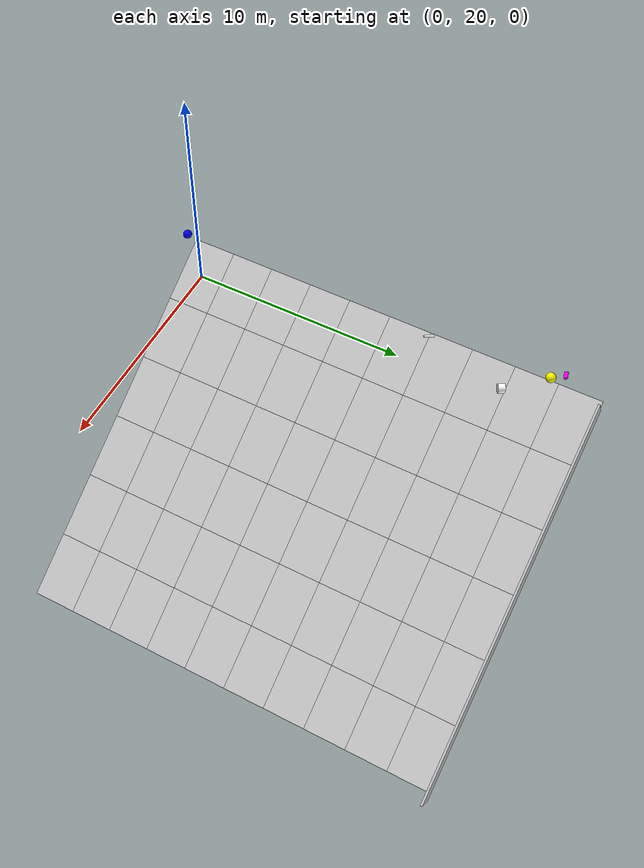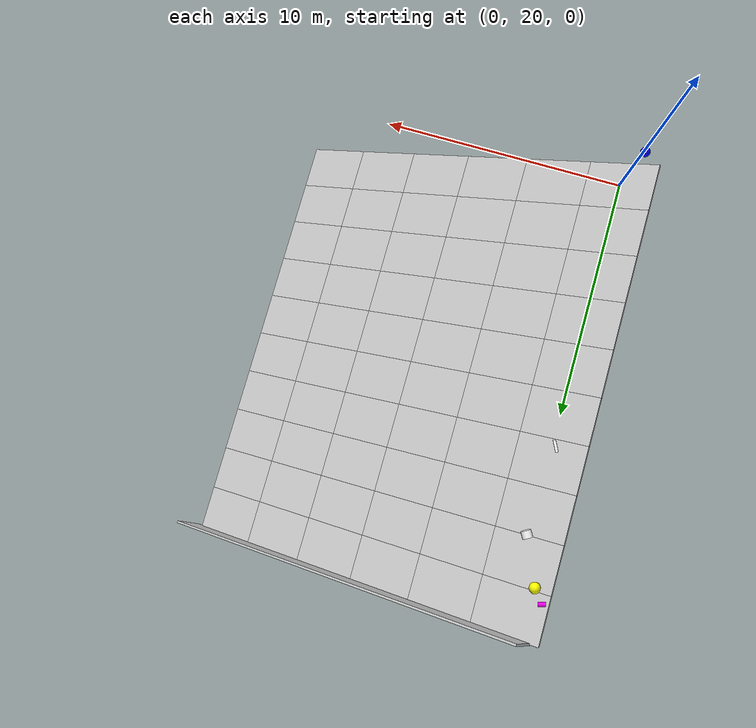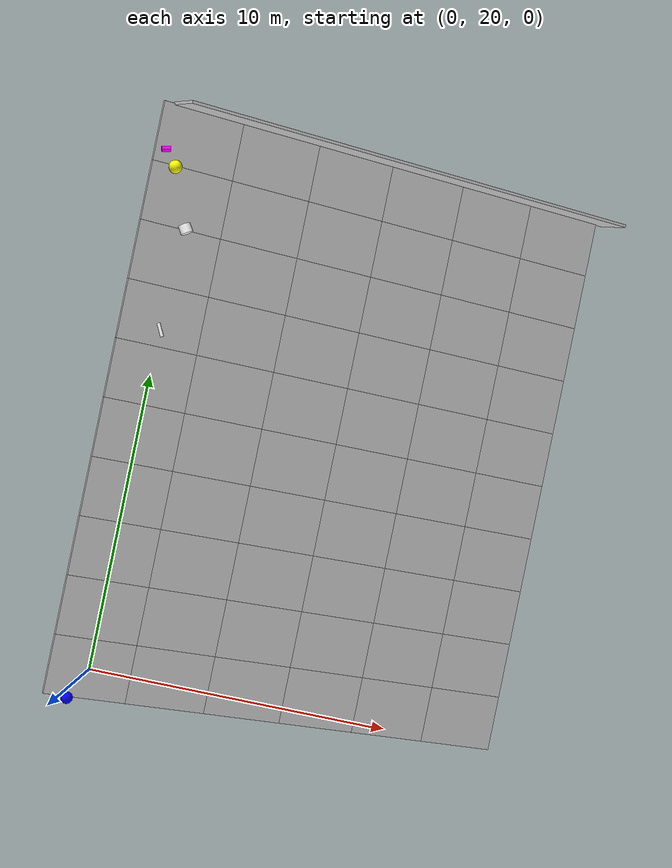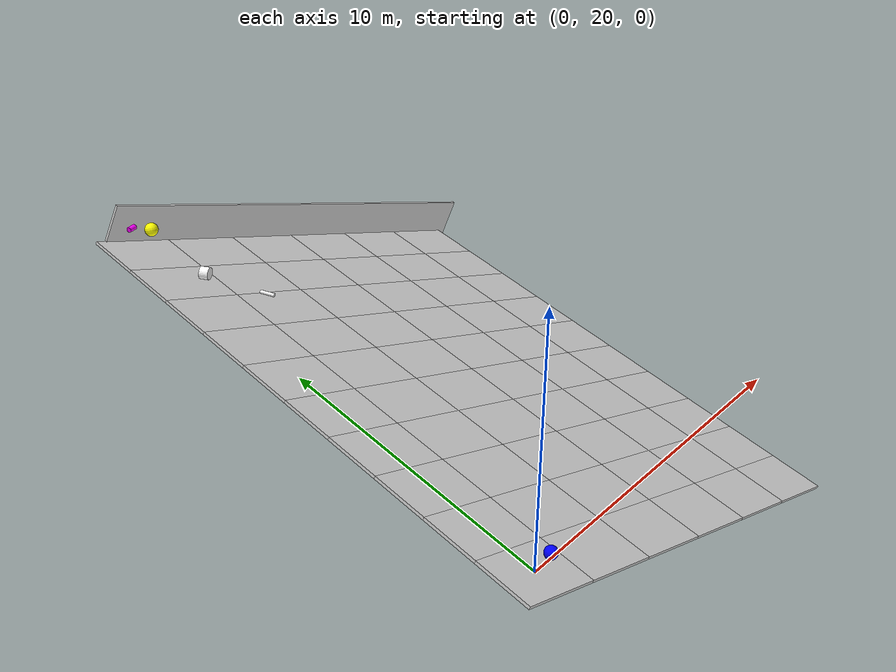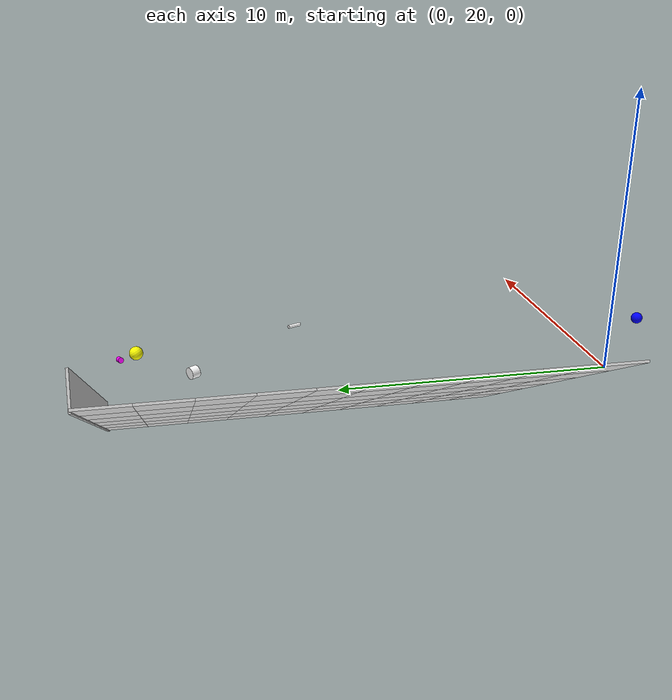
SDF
<sdf version="1.6">
 <world name="default">
  <model name="model_3">
   <pose>-0.353857069697118
        36.77085530000893
        2.132251702737335
        2.5881195164211936
        3.0934421121878204
        2.752064684889699</pose>
   <link name="link">
    <inertial>
     <mass>0.1605219682343749</mass>
     <inertia>
      <ixx>0.00316656911181048</ixx>
      <iyy>0.00316656911181048</iyy>
      <izz>0.00316656911181048</izz>
      <ixy>0.0</ixy>
      <ixz>0.0</ixz>
      <iyz>0.0</iyz>
     </inertia>
    </inertial>
    <collision name="collision">
     <geometry><sphere><radius>0.22207376307411114</radius></sphere></geometry>
    </collision>
    <visual name="visual">
     <geometry><sphere><radius>0.22207376307411114</radius></sphere></geometry>
     <material>
      <diffuse>1
              1
              0
              1</diffuse>
      <specular>0
              0
              0
              1</specular>
      <ambient>1
              0
              0
              1</ambient>
     </material>
    </visual>
   </link>
  </model>
  <model name="model_4">
   <pose>0.25562835703222775
        31.48790306413263
        2.454026162642254
        1.6109150502920049
        0.4844041277486058
        0.47663894841040116</pose>
   <link name="link">
    <inertial>
     <mass>0.0010997454857456105</mass>
     <inertia>
      <ixx>2.0701124029596154e-05</ixx>
      <iyy>2.0701124029596154e-05</iyy>
      <izz>1.7666730811801447e-06</izz>
      <ixy>0.0</ixy>
      <ixz>0.0</ixz>
      <iyz>0.0</iyz>
     </inertia>
    </inertial>
    <collision name="collision">
     <geometry>
      <cylinder><radius>0.05668223936332868</radius><length>0.46502051476608375</length></cylinder>
     </geometry>
    </collision>
    <visual name="visual">
     <geometry>
      <cylinder><radius>0.05668223936332868</radius><length>0.46502051476608375</length></cylinder>
     </geometry>
     <material>
      <diffuse>1
              1
              1
              1</diffuse>
      <specular>0
              1
              1
              1</specular>
      <ambient>1
              1
              1
              1</ambient>
     </material>
    </visual>
   </link>
  </model>
  <model name="model_6">
   <pose>-0.7681961952192605
        37.279755310238826
        2.120098301978966
        2.7999701416333806
        1.311916980899421
        3.0705459351184587</pose>
   <link name="link">
    <inertial>
     <mass>0.014166372268568886</mass>
     <inertia>
      <ixx>0.0001238716603329791</ixx>
      <iyy>0.0001238716603329791</iyy>
      <izz>5.612482599677863e-05</izz>
      <ixy>0.0</ixy>
      <ixz>0.0</ixz>
      <iyz>0.0</iyz>
     </inertia>
    </inertial>
    <collision name="collision">
     <geometry>
      <cylinder><radius>0.0890149959766019</radius><length>0.28488200166596106</length></cylinder>
     </geometry>
    </collision>
    <visual name="visual">
     <geometry>
      <cylinder><radius>0.0890149959766019</radius><length>0.28488200166596106</length></cylinder>
     </geometry>
     <material>
      <diffuse>1
              0
              1
              1</diffuse>
      <specular>0
              1
              1
              1</specular>
      <ambient>1
              1
              0
              1</ambient>
     </material>
    </visual>
   </link>
  </model>
  <model name="model_7">
   <pose>-0.35216568778221485
        19.194924710673952
        2.0448916751496973
        2.8281247883208547
        1.086383983744296
        2.708711065051292</pose>
   <link name="link">
    <inertial>
     <mass>0.08879607765681512</mass>
     <inertia>
      <ixx>0.0013709341070548317</ixx>
      <iyy>0.0013709341070548317</iyy>
      <izz>0.0013709341070548317</izz>
      <ixy>0.0</ixy>
      <ixz>0.0</ixz>
      <iyz>0.0</iyz>
     </inertia>
    </inertial>
    <collision name="collision">
     <geometry><sphere><radius>0.1964632860489126</radius></sphere></geometry>
    </collision>
    <visual name="visual">
     <geometry><sphere><radius>0.1964632860489126</radius></sphere></geometry>
     <material>
      <diffuse>0
              0
              1
              1</diffuse>
      <specular>0
              1
              0
              1</specular>
      <ambient>0
              0
              0
              1</ambient>
     </material>
    </visual>
   </link>
  </model>
  <model name="model_9">
   <pose>0.26346041130565445
        34.95744530427965
        1.0065088582934987
        1.4054825645249964
        1.454456644537457
        0.3821552857763127</pose>
   <link name="link">
    <inertial>
     <mass>0.13362260983026794</mass>
     <inertia>
      <ixx>0.0025017873766614517</ixx>
      <iyy>0.0025017873766614517</iyy>
      <izz>0.002927181712060923</izz>
      <ixy>0.0</ixy>
      <ixz>0.0</ixz>
      <iyz>0.0</iyz>
     </inertia>
    </inertial>
    <collision name="collision">
     <geometry>
      <cylinder><radius>0.20931476503415386</radius><length>0.3053447326711294</length></cylinder>
     </geometry>
    </collision>
    <visual name="visual">
     <geometry>
      <cylinder><radius>0.20931476503415386</radius><length>0.3053447326711294</length></cylinder>
     </geometry>
     <material>
      <diffuse>1
              1
              1
              1</diffuse>
      <specular>0
              0
              1
              1</specular>
      <ambient>1
              1
              1
              1</ambient>
     </material>
    </visual>
   </link>
  </model>
  <model name="block_0_10">
   <static>true</static>
   <pose>0.0 20.0 -0.0 0 0.5235987755982988 0</pose>
   <link name="link">
    <collision name="collision">
     <geometry><box><size>3.0
           2.0
           0.1</size></box></geometry>
    </collision>
    <visual name="visual">
     <geometry><box><size>3.0
           2.0
           0.1</size></box></geometry>
     <material>
      <ambient>0.8 0.8 0.8 1</ambient>
      <diffuse>0.8 0.8 0.8 1</diffuse>
      <specular>0.8 0.8 0.8 1</specular>
     </material>
    </visual>
   </link>
  </model>
  <model name="block_0_11">
   <static>true</static>
   <pose>0.0 22.0 -0.0 0 0.5235987755982988 0</pose>
   <link name="link">
    <collision name="collision">
     <geometry><box><size>3.0
           2.0
           0.1</size></box></geometry>
    </collision>
    <visual name="visual">
     <geometry><box><size>3.0
           2.0
           0.1</size></box></geometry>
     <material>
      <ambient>0.8 0.8 0.8 1</ambient>
      <diffuse>0.8 0.8 0.8 1</diffuse>
      <specular>0.8 0.8 0.8 1</specular>
     </material>
    </visual>
   </link>
  </model>
  <model name="block_0_12">
   <static>true</static>
   <pose>0.0 24.0 -0.0 0 0.5235987755982988 0</pose>
   <link name="link">
    <collision name="collision">
     <geometry><box><size>3.0
           2.0
           0.1</size></box></geometry>
    </collision>
    <visual name="visual">
     <geometry><box><size>3.0
           2.0
           0.1</size></box></geometry>
     <material>
      <ambient>0.8 0.8 0.8 1</ambient>
      <diffuse>0.8 0.8 0.8 1</diffuse>
      <specular>0.8 0.8 0.8 1</specular>
     </material>
    </visual>
   </link>
  </model>
  <model name="block_0_13">
   <static>true</static>
   <pose>0.0 26.0 -0.0 0 0.5235987755982988 0</pose>
   <link name="link">
    <collision name="collision">
     <geometry><box><size>3.0
           2.0
           0.1</size></box></geometry>
    </collision>
    <visual name="visual">
     <geometry><box><size>3.0
           2.0
           0.1</size></box></geometry>
     <material>
      <ambient>0.8 0.8 0.8 1</ambient>
      <diffuse>0.8 0.8 0.8 1</diffuse>
      <specular>0.8 0.8 0.8 1</specular>
     </material>
    </visual>
   </link>
  </model>
  <model name="block_0_14">
   <static>true</static>
   <pose>0.0 28.0 -0.0 0 0.5235987755982988 0</pose>
   <link name="link">
    <collision name="collision">
     <geometry><box><size>3.0
           2.0
           0.1</size></box></geometry>
    </collision>
    <visual name="visual">
     <geometry><box><size>3.0
           2.0
           0.1</size></box></geometry>
     <material>
      <ambient>0.8 0.8 0.8 1</ambient>
      <diffuse>0.8 0.8 0.8 1</diffuse>
      <specular>0.8 0.8 0.8 1</specular>
     </material>
    </visual>
   </link>
  </model>
  <model name="block_0_15">
   <static>true</static>
   <pose>0.0 30.0 -0.0 0 0.5235987755982988 0</pose>
   <link name="link">
    <collision name="collision">
     <geometry><box><size>3.0
           2.0
           0.1</size></box></geometry>
    </collision>
    <visual name="visual">
     <geometry><box><size>3.0
           2.0
           0.1</size></box></geometry>
     <material>
      <ambient>0.8 0.8 0.8 1</ambient>
      <diffuse>0.8 0.8 0.8 1</diffuse>
      <specular>0.8 0.8 0.8 1</specular>
     </material>
    </visual>
   </link>
  </model>
  <model name="block_0_16">
   <static>true</static>
   <pose>0.0 32.0 -0.0 0 0.5235987755982988 0</pose>
   <link name="link">
    <collision name="collision">
     <geometry><box><size>3.0
           2.0
           0.1</size></box></geometry>
    </collision>
    <visual name="visual">
     <geometry><box><size>3.0
           2.0
           0.1</size></box></geometry>
     <material>
      <ambient>0.8 0.8 0.8 1</ambient>
      <diffuse>0.8 0.8 0.8 1</diffuse>
      <specular>0.8 0.8 0.8 1</specular>
     </material>
    </visual>
   </link>
  </model>
  <model name="block_0_17">
   <static>true</static>
   <pose>0.0 34.0 -0.0 0 0.5235987755982988 0</pose>
   <link name="link">
    <collision name="collision">
     <geometry><box><size>3.0
           2.0
           0.1</size></box></geometry>
    </collision>
    <visual name="visual">
     <geometry><box><size>3.0
           2.0
           0.1</size></box></geometry>
     <material>
      <ambient>0.8 0.8 0.8 1</ambient>
      <diffuse>0.8 0.8 0.8 1</diffuse>
      <specular>0.8 0.8 0.8 1</specular>
     </material>
    </visual>
   </link>
  </model>
  <model name="block_0_18">
   <static>true</static>
   <pose>0.0 36.0 -0.0 0 0.5235987755982988 0</pose>
   <link name="link">
    <collision name="collision">
     <geometry><box><size>3.0
           2.0
           0.1</size></box></geometry>
    </collision>
    <visual name="visual">
     <geometry><box><size>3.0
           2.0
           0.1</size></box></geometry>
     <material>
      <ambient>0.8 0.8 0.8 1</ambient>
      <diffuse>0.8 0.8 0.8 1</diffuse>
      <specular>0.8 0.8 0.8 1</specular>
     </material>
    </visual>
   </link>
  </model>
  <model name="block_0_19">
   <static>true</static>
   <pose>0.0 38.0 -0.0 0 0.5235987755982988 0</pose>
   <link name="link">
    <collision name="collision">
     <geometry><box><size>3.0
           2.0
           0.1</size></box></geometry>
    </collision>
    <visual name="visual">
     <geometry><box><size>3.0
           2.0
           0.1</size></box></geometry>
     <material>
      <ambient>0.8 0.8 0.8 1</ambient>
      <diffuse>0.8 0.8 0.8 1</diffuse>
      <specular>0.8 0.8 0.8 1</specular>
     </material>
    </visual>
   </link>
  </model>
  <model name="block_1_10">
   <static>true</static>
   <pose>2.598076211353316 20.0 -1.4999999999999998 0 0.5235987755982988 0</pose>
   <link name="link">
    <collision name="collision">
     <geometry><box><size>3.0
           2.0
           0.1</size></box></geometry>
    </collision>
    <visual name="visual">
     <geometry><box><size>3.0
           2.0
           0.1</size></box></geometry>
     <material>
      <ambient>0.8 0.8 0.8 1</ambient>
      <diffuse>0.8 0.8 0.8 1</diffuse>
      <specular>0.8 0.8 0.8 1</specular>
     </material>
    </visual>
   </link>
  </model>
  <model name="block_1_11">
   <static>true</static>
   <pose>2.598076211353316 22.0 -1.4999999999999998 0 0.5235987755982988 0</pose>
   <link name="link">
    <collision name="collision">
     <geometry><box><size>3.0
           2.0
           0.1</size></box></geometry>
    </collision>
    <visual name="visual">
     <geometry><box><size>3.0
           2.0
           0.1</size></box></geometry>
     <material>
      <ambient>0.8 0.8 0.8 1</ambient>
      <diffuse>0.8 0.8 0.8 1</diffuse>
      <specular>0.8 0.8 0.8 1</specular>
     </material>
    </visual>
   </link>
  </model>
  <model name="block_1_12">
   <static>true</static>
   <pose>2.598076211353316 24.0 -1.4999999999999998 0 0.5235987755982988 0</pose>
   <link name="link">
    <collision name="collision">
     <geometry><box><size>3.0
           2.0
           0.1</size></box></geometry>
    </collision>
    <visual name="visual">
     <geometry><box><size>3.0
           2.0
           0.1</size></box></geometry>
     <material>
      <ambient>0.8 0.8 0.8 1</ambient>
      <diffuse>0.8 0.8 0.8 1</diffuse>
      <specular>0.8 0.8 0.8 1</specular>
     </material>
    </visual>
   </link>
  </model>
  <model name="block_1_13">
   <static>true</static>
   <pose>2.598076211353316 26.0 -1.4999999999999998 0 0.5235987755982988 0</pose>
   <link name="link">
    <collision name="collision">
     <geometry><box><size>3.0
           2.0
           0.1</size></box></geometry>
    </collision>
    <visual name="visual">
     <geometry><box><size>3.0
           2.0
           0.1</size></box></geometry>
     <material>
      <ambient>0.8 0.8 0.8 1</ambient>
      <diffuse>0.8 0.8 0.8 1</diffuse>
      <specular>0.8 0.8 0.8 1</specular>
     </material>
    </visual>
   </link>
  </model>
  <model name="block_1_14">
   <static>true</static>
   <pose>2.598076211353316 28.0 -1.4999999999999998 0 0.5235987755982988 0</pose>
   <link name="link">
    <collision name="collision">
     <geometry><box><size>3.0
           2.0
           0.1</size></box></geometry>
    </collision>
    <visual name="visual">
     <geometry><box><size>3.0
           2.0
           0.1</size></box></geometry>
     <material>
      <ambient>0.8 0.8 0.8 1</ambient>
      <diffuse>0.8 0.8 0.8 1</diffuse>
      <specular>0.8 0.8 0.8 1</specular>
     </material>
    </visual>
   </link>
  </model>
  <model name="block_1_15">
   <static>true</static>
   <pose>2.598076211353316 30.0 -1.4999999999999998 0 0.5235987755982988 0</pose>
   <link name="link">
    <collision name="collision">
     <geometry><box><size>3.0
           2.0
           0.1</size></box></geometry>
    </collision>
    <visual name="visual">
     <geometry><box><size>3.0
           2.0
           0.1</size></box></geometry>
     <material>
      <ambient>0.8 0.8 0.8 1</ambient>
      <diffuse>0.8 0.8 0.8 1</diffuse>
      <specular>0.8 0.8 0.8 1</specular>
     </material>
    </visual>
   </link>
  </model>
  <model name="block_1_16">
   <static>true</static>
   <pose>2.598076211353316 32.0 -1.4999999999999998 0 0.5235987755982988 0</pose>
   <link name="link">
    <collision name="collision">
     <geometry><box><size>3.0
           2.0
           0.1</size></box></geometry>
    </collision>
    <visual name="visual">
     <geometry><box><size>3.0
           2.0
           0.1</size></box></geometry>
     <material>
      <ambient>0.8 0.8 0.8 1</ambient>
      <diffuse>0.8 0.8 0.8 1</diffuse>
      <specular>0.8 0.8 0.8 1</specular>
     </material>
    </visual>
   </link>
  </model>
  <model name="block_1_17">
   <static>true</static>
   <pose>2.598076211353316 34.0 -1.4999999999999998 0 0.5235987755982988 0</pose>
   <link name="link">
    <collision name="collision">
     <geometry><box><size>3.0
           2.0
           0.1</size></box></geometry>
    </collision>
    <visual name="visual">
     <geometry><box><size>3.0
           2.0
           0.1</size></box></geometry>
     <material>
      <ambient>0.8 0.8 0.8 1</ambient>
      <diffuse>0.8 0.8 0.8 1</diffuse>
      <specular>0.8 0.8 0.8 1</specular>
     </material>
    </visual>
   </link>
  </model>
  <model name="block_1_18">
   <static>true</static>
   <pose>2.598076211353316 36.0 -1.4999999999999998 0 0.5235987755982988 0</pose>
   <link name="link">
    <collision name="collision">
     <geometry><box><size>3.0
           2.0
           0.1</size></box></geometry>
    </collision>
    <visual name="visual">
     <geometry><box><size>3.0
           2.0
           0.1</size></box></geometry>
     <material>
      <ambient>0.8 0.8 0.8 1</ambient>
      <diffuse>0.8 0.8 0.8 1</diffuse>
      <specular>0.8 0.8 0.8 1</specular>
     </material>
    </visual>
   </link>
  </model>
  <model name="block_1_19">
   <static>true</static>
   <pose>2.598076211353316 38.0 -1.4999999999999998 0 0.5235987755982988 0</pose>
   <link name="link">
    <collision name="collision">
     <geometry><box><size>3.0
           2.0
           0.1</size></box></geometry>
    </collision>
    <visual name="visual">
     <geometry><box><size>3.0
           2.0
           0.1</size></box></geometry>
     <material>
      <ambient>0.8 0.8 0.8 1</ambient>
      <diffuse>0.8 0.8 0.8 1</diffuse>
      <specular>0.8 0.8 0.8 1</specular>
     </material>
    </visual>
   </link>
  </model>
  <model name="block_2_10">
   <static>true</static>
   <pose>5.196152422706632 20.0 -2.9999999999999996 0 0.5235987755982988 0</pose>
   <link name="link">
    <collision name="collision">
     <geometry><box><size>3.0
           2.0
           0.1</size></box></geometry>
    </collision>
    <visual name="visual">
     <geometry><box><size>3.0
           2.0
           0.1</size></box></geometry>
     <material>
      <ambient>0.8 0.8 0.8 1</ambient>
      <diffuse>0.8 0.8 0.8 1</diffuse>
      <specular>0.8 0.8 0.8 1</specular>
     </material>
    </visual>
   </link>
  </model>
  <model name="block_2_11">
   <static>true</static>
   <pose>5.196152422706632 22.0 -2.9999999999999996 0 0.5235987755982988 0</pose>
   <link name="link">
    <collision name="collision">
     <geometry><box><size>3.0
           2.0
           0.1</size></box></geometry>
    </collision>
    <visual name="visual">
     <geometry><box><size>3.0
           2.0
           0.1</size></box></geometry>
     <material>
      <ambient>0.8 0.8 0.8 1</ambient>
      <diffuse>0.8 0.8 0.8 1</diffuse>
      <specular>0.8 0.8 0.8 1</specular>
     </material>
    </visual>
   </link>
  </model>
  <model name="block_2_12">
   <static>true</static>
   <pose>5.196152422706632 24.0 -2.9999999999999996 0 0.5235987755982988 0</pose>
   <link name="link">
    <collision name="collision">
     <geometry><box><size>3.0
           2.0
           0.1</size></box></geometry>
    </collision>
    <visual name="visual">
     <geometry><box><size>3.0
           2.0
           0.1</size></box></geometry>
     <material>
      <ambient>0.8 0.8 0.8 1</ambient>
      <diffuse>0.8 0.8 0.8 1</diffuse>
      <specular>0.8 0.8 0.8 1</specular>
     </material>
    </visual>
   </link>
  </model>
  <model name="block_2_13">
   <static>true</static>
   <pose>5.196152422706632 26.0 -2.9999999999999996 0 0.5235987755982988 0</pose>
   <link name="link">
    <collision name="collision">
     <geometry><box><size>3.0
           2.0
           0.1</size></box></geometry>
    </collision>
    <visual name="visual">
     <geometry><box><size>3.0
           2.0
           0.1</size></box></geometry>
     <material>
      <ambient>0.8 0.8 0.8 1</ambient>
      <diffuse>0.8 0.8 0.8 1</diffuse>
      <specular>0.8 0.8 0.8 1</specular>
     </material>
    </visual>
   </link>
  </model>
  <model name="block_2_14">
   <static>true</static>
   <pose>5.196152422706632 28.0 -2.9999999999999996 0 0.5235987755982988 0</pose>
   <link name="link">
    <collision name="collision">
     <geometry><box><size>3.0
           2.0
           0.1</size></box></geometry>
    </collision>
    <visual name="visual">
     <geometry><box><size>3.0
           2.0
           0.1</size></box></geometry>
     <material>
      <ambient>0.8 0.8 0.8 1</ambient>
      <diffuse>0.8 0.8 0.8 1</diffuse>
      <specular>0.8 0.8 0.8 1</specular>
     </material>
    </visual>
   </link>
  </model>
  <model name="block_2_15">
   <static>true</static>
   <pose>5.196152422706632 30.0 -2.9999999999999996 0 0.5235987755982988 0</pose>
   <link name="link">
    <collision name="collision">
     <geometry><box><size>3.0
           2.0
           0.1</size></box></geometry>
    </collision>
    <visual name="visual">
     <geometry><box><size>3.0
           2.0
           0.1</size></box></geometry>
     <material>
      <ambient>0.8 0.8 0.8 1</ambient>
      <diffuse>0.8 0.8 0.8 1</diffuse>
      <specular>0.8 0.8 0.8 1</specular>
     </material>
    </visual>
   </link>
  </model>
  <model name="block_2_16">
   <static>true</static>
   <pose>5.196152422706632 32.0 -2.9999999999999996 0 0.5235987755982988 0</pose>
   <link name="link">
    <collision name="collision">
     <geometry><box><size>3.0
           2.0
           0.1</size></box></geometry>
    </collision>
    <visual name="visual">
     <geometry><box><size>3.0
           2.0
           0.1</size></box></geometry>
     <material>
      <ambient>0.8 0.8 0.8 1</ambient>
      <diffuse>0.8 0.8 0.8 1</diffuse>
      <specular>0.8 0.8 0.8 1</specular>
     </material>
    </visual>
   </link>
  </model>
  <model name="block_2_17">
   <static>true</static>
   <pose>5.196152422706632 34.0 -2.9999999999999996 0 0.5235987755982988 0</pose>
   <link name="link">
    <collision name="collision">
     <geometry><box><size>3.0
           2.0
           0.1</size></box></geometry>
    </collision>
    <visual name="visual">
     <geometry><box><size>3.0
           2.0
           0.1</size></box></geometry>
     <material>
      <ambient>0.8 0.8 0.8 1</ambient>
      <diffuse>0.8 0.8 0.8 1</diffuse>
      <specular>0.8 0.8 0.8 1</specular>
     </material>
    </visual>
   </link>
  </model>
  <model name="block_2_18">
   <static>true</static>
   <pose>5.196152422706632 36.0 -2.9999999999999996 0 0.5235987755982988 0</pose>
   <link name="link">
    <collision name="collision">
     <geometry><box><size>3.0
           2.0
           0.1</size></box></geometry>
    </collision>
    <visual name="visual">
     <geometry><box><size>3.0
           2.0
           0.1</size></box></geometry>
     <material>
      <ambient>0.8 0.8 0.8 1</ambient>
      <diffuse>0.8 0.8 0.8 1</diffuse>
      <specular>0.8 0.8 0.8 1</specular>
     </material>
    </visual>
   </link>
  </model>
  <model name="block_2_19">
   <static>true</static>
   <pose>5.196152422706632 38.0 -2.9999999999999996 0 0.5235987755982988 0</pose>
   <link name="link">
    <collision name="collision">
     <geometry><box><size>3.0
           2.0
           0.1</size></box></geometry>
    </collision>
    <visual name="visual">
     <geometry><box><size>3.0
           2.0
           0.1</size></box></geometry>
     <material>
      <ambient>0.8 0.8 0.8 1</ambient>
      <diffuse>0.8 0.8 0.8 1</diffuse>
      <specular>0.8 0.8 0.8 1</specular>
     </material>
    </visual>
   </link>
  </model>
  <model name="block_3_10">
   <static>true</static>
   <pose>7.794228634059948 20.0 -4.499999999999999 0 0.5235987755982988 0</pose>
   <link name="link">
    <collision name="collision">
     <geometry><box><size>3.0
           2.0
           0.1</size></box></geometry>
    </collision>
    <visual name="visual">
     <geometry><box><size>3.0
           2.0
           0.1</size></box></geometry>
     <material>
      <ambient>0.8 0.8 0.8 1</ambient>
      <diffuse>0.8 0.8 0.8 1</diffuse>
      <specular>0.8 0.8 0.8 1</specular>
     </material>
    </visual>
   </link>
  </model>
  <model name="block_3_11">
   <static>true</static>
   <pose>7.794228634059948 22.0 -4.499999999999999 0 0.5235987755982988 0</pose>
   <link name="link">
    <collision name="collision">
     <geometry><box><size>3.0
           2.0
           0.1</size></box></geometry>
    </collision>
    <visual name="visual">
     <geometry><box><size>3.0
           2.0
           0.1</size></box></geometry>
     <material>
      <ambient>0.8 0.8 0.8 1</ambient>
      <diffuse>0.8 0.8 0.8 1</diffuse>
      <specular>0.8 0.8 0.8 1</specular>
     </material>
    </visual>
   </link>
  </model>
  <model name="block_3_12">
   <static>true</static>
   <pose>7.794228634059948 24.0 -4.499999999999999 0 0.5235987755982988 0</pose>
   <link name="link">
    <collision name="collision">
     <geometry><box><size>3.0
           2.0
           0.1</size></box></geometry>
    </collision>
    <visual name="visual">
     <geometry><box><size>3.0
           2.0
           0.1</size></box></geometry>
     <material>
      <ambient>0.8 0.8 0.8 1</ambient>
      <diffuse>0.8 0.8 0.8 1</diffuse>
      <specular>0.8 0.8 0.8 1</specular>
     </material>
    </visual>
   </link>
  </model>
  <model name="block_3_13">
   <static>true</static>
   <pose>7.794228634059948 26.0 -4.499999999999999 0 0.5235987755982988 0</pose>
   <link name="link">
    <collision name="collision">
     <geometry><box><size>3.0
           2.0
           0.1</size></box></geometry>
    </collision>
    <visual name="visual">
     <geometry><box><size>3.0
           2.0
           0.1</size></box></geometry>
     <material>
      <ambient>0.8 0.8 0.8 1</ambient>
      <diffuse>0.8 0.8 0.8 1</diffuse>
      <specular>0.8 0.8 0.8 1</specular>
     </material>
    </visual>
   </link>
  </model>
  <model name="block_3_14">
   <static>true</static>
   <pose>7.794228634059948 28.0 -4.499999999999999 0 0.5235987755982988 0</pose>
   <link name="link">
    <collision name="collision">
     <geometry><box><size>3.0
           2.0
           0.1</size></box></geometry>
    </collision>
    <visual name="visual">
     <geometry><box><size>3.0
           2.0
           0.1</size></box></geometry>
     <material>
      <ambient>0.8 0.8 0.8 1</ambient>
      <diffuse>0.8 0.8 0.8 1</diffuse>
      <specular>0.8 0.8 0.8 1</specular>
     </material>
    </visual>
   </link>
  </model>
  <model name="block_3_15">
   <static>true</static>
   <pose>7.794228634059948 30.0 -4.499999999999999 0 0.5235987755982988 0</pose>
   <link name="link">
    <collision name="collision">
     <geometry><box><size>3.0
           2.0
           0.1</size></box></geometry>
    </collision>
    <visual name="visual">
     <geometry><box><size>3.0
           2.0
           0.1</size></box></geometry>
     <material>
      <ambient>0.8 0.8 0.8 1</ambient>
      <diffuse>0.8 0.8 0.8 1</diffuse>
      <specular>0.8 0.8 0.8 1</specular>
     </material>
    </visual>
   </link>
  </model>
  <model name="block_3_16">
   <static>true</static>
   <pose>7.794228634059948 32.0 -4.499999999999999 0 0.5235987755982988 0</pose>
   <link name="link">
    <collision name="collision">
     <geometry><box><size>3.0
           2.0
           0.1</size></box></geometry>
    </collision>
    <visual name="visual">
     <geometry><box><size>3.0
           2.0
           0.1</size></box></geometry>
     <material>
      <ambient>0.8 0.8 0.8 1</ambient>
      <diffuse>0.8 0.8 0.8 1</diffuse>
      <specular>0.8 0.8 0.8 1</specular>
     </material>
    </visual>
   </link>
  </model>
  <model name="block_3_17">
   <static>true</static>
   <pose>7.794228634059948 34.0 -4.499999999999999 0 0.5235987755982988 0</pose>
   <link name="link">
    <collision name="collision">
     <geometry><box><size>3.0
           2.0
           0.1</size></box></geometry>
    </collision>
    <visual name="visual">
     <geometry><box><size>3.0
           2.0
           0.1</size></box></geometry>
     <material>
      <ambient>0.8 0.8 0.8 1</ambient>
      <diffuse>0.8 0.8 0.8 1</diffuse>
      <specular>0.8 0.8 0.8 1</specular>
     </material>
    </visual>
   </link>
  </model>
  <model name="block_3_18">
   <static>true</static>
   <pose>7.794228634059948 36.0 -4.499999999999999 0 0.5235987755982988 0</pose>
   <link name="link">
    <collision name="collision">
     <geometry><box><size>3.0
           2.0
           0.1</size></box></geometry>
    </collision>
    <visual name="visual">
     <geometry><box><size>3.0
           2.0
           0.1</size></box></geometry>
     <material>
      <ambient>0.8 0.8 0.8 1</ambient>
      <diffuse>0.8 0.8 0.8 1</diffuse>
      <specular>0.8 0.8 0.8 1</specular>
     </material>
    </visual>
   </link>
  </model>
  <model name="block_3_19">
   <static>true</static>
   <pose>7.794228634059948 38.0 -4.499999999999999 0 0.5235987755982988 0</pose>
   <link name="link">
    <collision name="collision">
     <geometry><box><size>3.0
           2.0
           0.1</size></box></geometry>
    </collision>
    <visual name="visual">
     <geometry><box><size>3.0
           2.0
           0.1</size></box></geometry>
     <material>
      <ambient>0.8 0.8 0.8 1</ambient>
      <diffuse>0.8 0.8 0.8 1</diffuse>
      <specular>0.8 0.8 0.8 1</specular>
     </material>
    </visual>
   </link>
  </model>
  <model name="block_4_10">
   <static>true</static>
   <pose>10.392304845413264 20.0 -5.999999999999999 0 0.5235987755982988 0</pose>
   <link name="link">
    <collision name="collision">
     <geometry><box><size>3.0
           2.0
           0.1</size></box></geometry>
    </collision>
    <visual name="visual">
     <geometry><box><size>3.0
           2.0
           0.1</size></box></geometry>
     <material>
      <ambient>0.8 0.8 0.8 1</ambient>
      <diffuse>0.8 0.8 0.8 1</diffuse>
      <specular>0.8 0.8 0.8 1</specular>
     </material>
    </visual>
   </link>
  </model>
  <model name="block_4_11">
   <static>true</static>
   <pose>10.392304845413264 22.0 -5.999999999999999 0 0.5235987755982988 0</pose>
   <link name="link">
    <collision name="collision">
     <geometry><box><size>3.0
           2.0
           0.1</size></box></geometry>
    </collision>
    <visual name="visual">
     <geometry><box><size>3.0
           2.0
           0.1</size></box></geometry>
     <material>
      <ambient>0.8 0.8 0.8 1</ambient>
      <diffuse>0.8 0.8 0.8 1</diffuse>
      <specular>0.8 0.8 0.8 1</specular>
     </material>
    </visual>
   </link>
  </model>
  <model name="block_4_12">
   <static>true</static>
   <pose>10.392304845413264 24.0 -5.999999999999999 0 0.5235987755982988 0</pose>
   <link name="link">
    <collision name="collision">
     <geometry><box><size>3.0
           2.0
           0.1</size></box></geometry>
    </collision>
    <visual name="visual">
     <geometry><box><size>3.0
           2.0
           0.1</size></box></geometry>
     <material>
      <ambient>0.8 0.8 0.8 1</ambient>
      <diffuse>0.8 0.8 0.8 1</diffuse>
      <specular>0.8 0.8 0.8 1</specular>
     </material>
    </visual>
   </link>
  </model>
  <model name="block_4_13">
   <static>true</static>
   <pose>10.392304845413264 26.0 -5.999999999999999 0 0.5235987755982988 0</pose>
   <link name="link">
    <collision name="collision">
     <geometry><box><size>3.0
           2.0
           0.1</size></box></geometry>
    </collision>
    <visual name="visual">
     <geometry><box><size>3.0
           2.0
           0.1</size></box></geometry>
     <material>
      <ambient>0.8 0.8 0.8 1</ambient>
      <diffuse>0.8 0.8 0.8 1</diffuse>
      <specular>0.8 0.8 0.8 1</specular>
     </material>
    </visual>
   </link>
  </model>
  <model name="block_4_14">
   <static>true</static>
   <pose>10.392304845413264 28.0 -5.999999999999999 0 0.5235987755982988 0</pose>
   <link name="link">
    <collision name="collision">
     <geometry><box><size>3.0
           2.0
           0.1</size></box></geometry>
    </collision>
    <visual name="visual">
     <geometry><box><size>3.0
           2.0
           0.1</size></box></geometry>
     <material>
      <ambient>0.8 0.8 0.8 1</ambient>
      <diffuse>0.8 0.8 0.8 1</diffuse>
      <specular>0.8 0.8 0.8 1</specular>
     </material>
    </visual>
   </link>
  </model>
  <model name="block_4_15">
   <static>true</static>
   <pose>10.392304845413264 30.0 -5.999999999999999 0 0.5235987755982988 0</pose>
   <link name="link">
    <collision name="collision">
     <geometry><box><size>3.0
           2.0
           0.1</size></box></geometry>
    </collision>
    <visual name="visual">
     <geometry><box><size>3.0
           2.0
           0.1</size></box></geometry>
     <material>
      <ambient>0.8 0.8 0.8 1</ambient>
      <diffuse>0.8 0.8 0.8 1</diffuse>
      <specular>0.8 0.8 0.8 1</specular>
     </material>
    </visual>
   </link>
  </model>
  <model name="block_4_16">
   <static>true</static>
   <pose>10.392304845413264 32.0 -5.999999999999999 0 0.5235987755982988 0</pose>
   <link name="link">
    <collision name="collision">
     <geometry><box><size>3.0
           2.0
           0.1</size></box></geometry>
    </collision>
    <visual name="visual">
     <geometry><box><size>3.0
           2.0
           0.1</size></box></geometry>
     <material>
      <ambient>0.8 0.8 0.8 1</ambient>
      <diffuse>0.8 0.8 0.8 1</diffuse>
      <specular>0.8 0.8 0.8 1</specular>
     </material>
    </visual>
   </link>
  </model>
  <model name="block_4_17">
   <static>true</static>
   <pose>10.392304845413264 34.0 -5.999999999999999 0 0.5235987755982988 0</pose>
   <link name="link">
    <collision name="collision">
     <geometry><box><size>3.0
           2.0
           0.1</size></box></geometry>
    </collision>
    <visual name="visual">
     <geometry><box><size>3.0
           2.0
           0.1</size></box></geometry>
     <material>
      <ambient>0.8 0.8 0.8 1</ambient>
      <diffuse>0.8 0.8 0.8 1</diffuse>
      <specular>0.8 0.8 0.8 1</specular>
     </material>
    </visual>
   </link>
  </model>
  <model name="block_4_18">
   <static>true</static>
   <pose>10.392304845413264 36.0 -5.999999999999999 0 0.5235987755982988 0</pose>
   <link name="link">
    <collision name="collision">
     <geometry><box><size>3.0
           2.0
           0.1</size></box></geometry>
    </collision>
    <visual name="visual">
     <geometry><box><size>3.0
           2.0
           0.1</size></box></geometry>
     <material>
      <ambient>0.8 0.8 0.8 1</ambient>
      <diffuse>0.8 0.8 0.8 1</diffuse>
      <specular>0.8 0.8 0.8 1</specular>
     </material>
    </visual>
   </link>
  </model>
  <model name="block_4_19">
   <static>true</static>
   <pose>10.392304845413264 38.0 -5.999999999999999 0 0.5235987755982988 0</pose>
   <link name="link">
    <collision name="collision">
     <geometry><box><size>3.0
           2.0
           0.1</size></box></geometry>
    </collision>
    <visual name="visual">
     <geometry><box><size>3.0
           2.0
           0.1</size></box></geometry>
     <material>
      <ambient>0.8 0.8 0.8 1</ambient>
      <diffuse>0.8 0.8 0.8 1</diffuse>
      <specular>0.8 0.8 0.8 1</specular>
     </material>
    </visual>
   </link>
  </model>
  <model name="block_5_10">
   <static>true</static>
   <pose>12.99038105676658 20.0 -7.499999999999999 0 0.5235987755982988 0</pose>
   <link name="link">
    <collision name="collision">
     <geometry><box><size>3.0
           2.0
           0.1</size></box></geometry>
    </collision>
    <visual name="visual">
     <geometry><box><size>3.0
           2.0
           0.1</size></box></geometry>
     <material>
      <ambient>0.8 0.8 0.8 1</ambient>
      <diffuse>0.8 0.8 0.8 1</diffuse>
      <specular>0.8 0.8 0.8 1</specular>
     </material>
    </visual>
   </link>
  </model>
  <model name="block_5_11">
   <static>true</static>
   <pose>12.99038105676658 22.0 -7.499999999999999 0 0.5235987755982988 0</pose>
   <link name="link">
    <collision name="collision">
     <geometry><box><size>3.0
           2.0
           0.1</size></box></geometry>
    </collision>
    <visual name="visual">
     <geometry><box><size>3.0
           2.0
           0.1</size></box></geometry>
     <material>
      <ambient>0.8 0.8 0.8 1</ambient>
      <diffuse>0.8 0.8 0.8 1</diffuse>
      <specular>0.8 0.8 0.8 1</specular>
     </material>
    </visual>
   </link>
  </model>
  <model name="block_5_12">
   <static>true</static>
   <pose>12.99038105676658 24.0 -7.499999999999999 0 0.5235987755982988 0</pose>
   <link name="link">
    <collision name="collision">
     <geometry><box><size>3.0
           2.0
           0.1</size></box></geometry>
    </collision>
    <visual name="visual">
     <geometry><box><size>3.0
           2.0
           0.1</size></box></geometry>
     <material>
      <ambient>0.8 0.8 0.8 1</ambient>
      <diffuse>0.8 0.8 0.8 1</diffuse>
      <specular>0.8 0.8 0.8 1</specular>
     </material>
    </visual>
   </link>
  </model>
  <model name="block_5_13">
   <static>true</static>
   <pose>12.99038105676658 26.0 -7.499999999999999 0 0.5235987755982988 0</pose>
   <link name="link">
    <collision name="collision">
     <geometry><box><size>3.0
           2.0
           0.1</size></box></geometry>
    </collision>
    <visual name="visual">
     <geometry><box><size>3.0
           2.0
           0.1</size></box></geometry>
     <material>
      <ambient>0.8 0.8 0.8 1</ambient>
      <diffuse>0.8 0.8 0.8 1</diffuse>
      <specular>0.8 0.8 0.8 1</specular>
     </material>
    </visual>
   </link>
  </model>
  <model name="block_5_14">
   <static>true</static>
   <pose>12.99038105676658 28.0 -7.499999999999999 0 0.5235987755982988 0</pose>
   <link name="link">
    <collision name="collision">
     <geometry><box><size>3.0
           2.0
           0.1</size></box></geometry>
    </collision>
    <visual name="visual">
     <geometry><box><size>3.0
           2.0
           0.1</size></box></geometry>
     <material>
      <ambient>0.8 0.8 0.8 1</ambient>
      <diffuse>0.8 0.8 0.8 1</diffuse>
      <specular>0.8 0.8 0.8 1</specular>
     </material>
    </visual>
   </link>
  </model>
  <model name="block_5_15">
   <static>true</static>
   <pose>12.99038105676658 30.0 -7.499999999999999 0 0.5235987755982988 0</pose>
   <link name="link">
    <collision name="collision">
     <geometry><box><size>3.0
           2.0
           0.1</size></box></geometry>
    </collision>
    <visual name="visual">
     <geometry><box><size>3.0
           2.0
           0.1</size></box></geometry>
     <material>
      <ambient>0.8 0.8 0.8 1</ambient>
      <diffuse>0.8 0.8 0.8 1</diffuse>
      <specular>0.8 0.8 0.8 1</specular>
     </material>
    </visual>
   </link>
  </model>
  <model name="block_5_16">
   <static>true</static>
   <pose>12.99038105676658 32.0 -7.499999999999999 0 0.5235987755982988 0</pose>
   <link name="link">
    <collision name="collision">
     <geometry><box><size>3.0
           2.0
           0.1</size></box></geometry>
    </collision>
    <visual name="visual">
     <geometry><box><size>3.0
           2.0
           0.1</size></box></geometry>
     <material>
      <ambient>0.8 0.8 0.8 1</ambient>
      <diffuse>0.8 0.8 0.8 1</diffuse>
      <specular>0.8 0.8 0.8 1</specular>
     </material>
    </visual>
   </link>
  </model>
  <model name="block_5_17">
   <static>true</static>
   <pose>12.99038105676658 34.0 -7.499999999999999 0 0.5235987755982988 0</pose>
   <link name="link">
    <collision name="collision">
     <geometry><box><size>3.0
           2.0
           0.1</size></box></geometry>
    </collision>
    <visual name="visual">
     <geometry><box><size>3.0
           2.0
           0.1</size></box></geometry>
     <material>
      <ambient>0.8 0.8 0.8 1</ambient>
      <diffuse>0.8 0.8 0.8 1</diffuse>
      <specular>0.8 0.8 0.8 1</specular>
     </material>
    </visual>
   </link>
  </model>
  <model name="block_5_18">
   <static>true</static>
   <pose>12.99038105676658 36.0 -7.499999999999999 0 0.5235987755982988 0</pose>
   <link name="link">
    <collision name="collision">
     <geometry><box><size>3.0
           2.0
           0.1</size></box></geometry>
    </collision>
    <visual name="visual">
     <geometry><box><size>3.0
           2.0
           0.1</size></box></geometry>
     <material>
      <ambient>0.8 0.8 0.8 1</ambient>
      <diffuse>0.8 0.8 0.8 1</diffuse>
      <specular>0.8 0.8 0.8 1</specular>
     </material>
    </visual>
   </link>
  </model>
  <model name="block_5_19">
   <static>true</static>
   <pose>12.99038105676658 38.0 -7.499999999999999 0 0.5235987755982988 0</pose>
   <link name="link">
    <collision name="collision">
     <geometry><box><size>3.0
           2.0
           0.1</size></box></geometry>
    </collision>
    <visual name="visual">
     <geometry><box><size>3.0
           2.0
           0.1</size></box></geometry>
     <material>
      <ambient>0.8 0.8 0.8 1</ambient>
      <diffuse>0.8 0.8 0.8 1</diffuse>
      <specular>0.8 0.8 0.8 1</specular>
     </material>
    </visual>
   </link>
  </model>
  <model name="side_block_B">
   <static>true</static>
   <pose>7.144709581221619
        39.0
        -3.374999999999999
        0
        0.5235987755982988
        0</pose>
   <link name="link">
    <collision name="collision">
     <geometry><box><size>18.0
           0.1
           1.4999999999999998</size></box></geometry>
    </collision>
    <visual name="visual">
     <geometry><box><size>18.0
           0.1
           1.4999999999999998</size></box></geometry>
     <material>
      <ambient>0.8 0.8 0.8 1</ambient>
      <diffuse>0.8 0.8 0.8 1</diffuse>
      <specular>0.8 0.8 0.8 1</specular>
     </material>
    </visual>
   </link>
  </model>
 </world>
</sdf>
